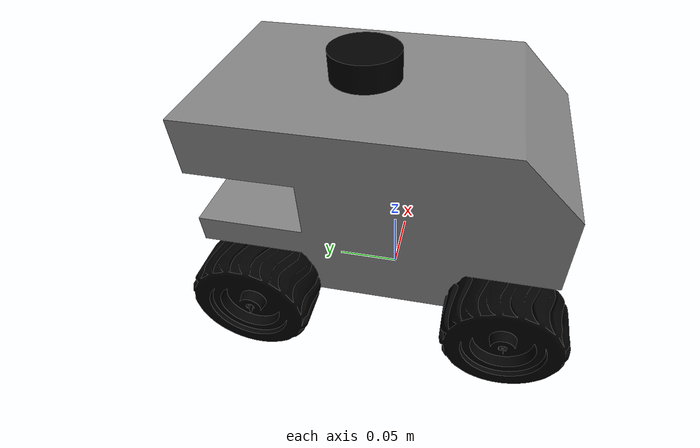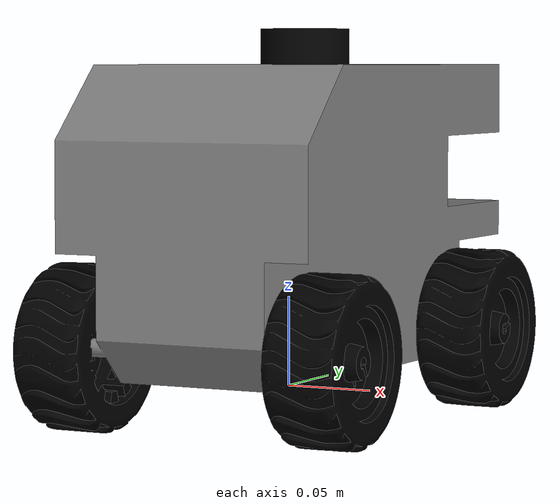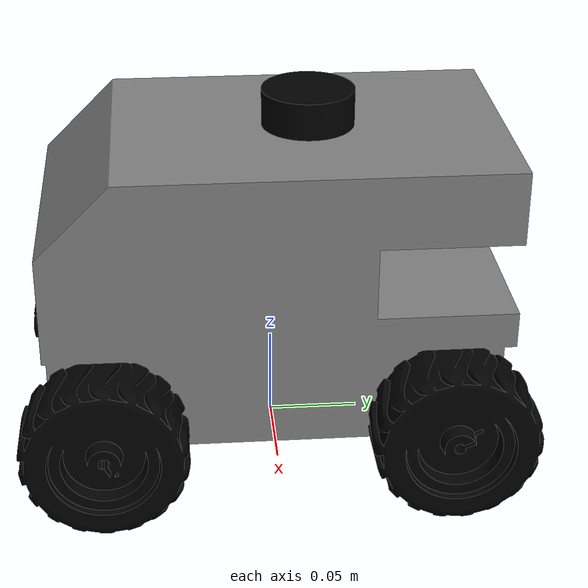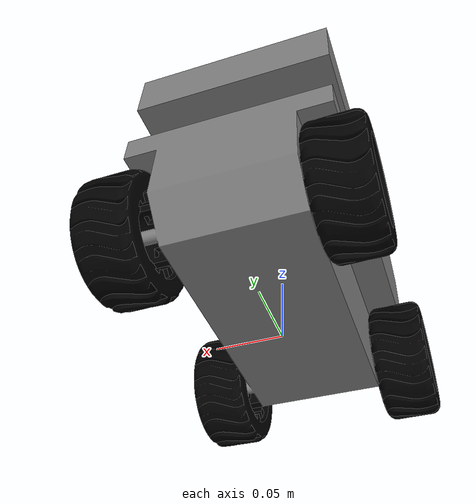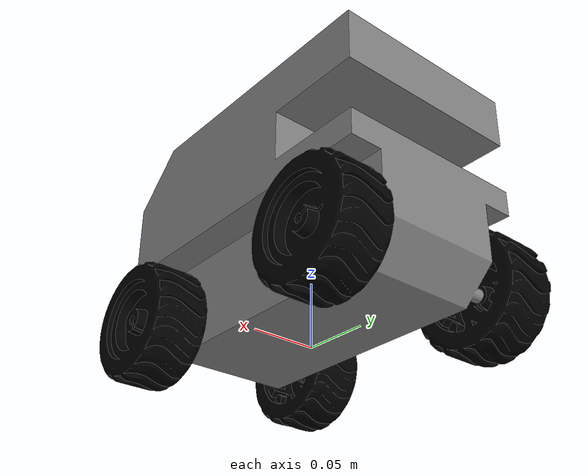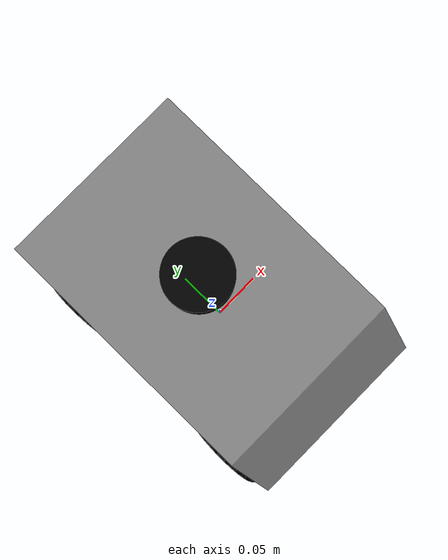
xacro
<?xml version="1.0" ?>
<robot name="amr_x100" xmlns:xacro="http://www.ros.org/wiki/xacro">

<xacro:include filename="$(find amr_x100_description)/urdf/materials.xacro" />
<xacro:include filename="$(find amr_x100_description)/urdf/amr_x100.trans" />
<xacro:include filename="$(find amr_x100_description)/urdf/amr_x100.gazebo" />
<link name="base_link">
  <inertial>
    <origin xyz="7.255471404615764e-17 0.006962748981841171 0.10189542905865645" rpy="0 0 0"/>
    <mass value="7.872164892691029"/>
    <inertia ixx="0.074639" iyy="0.044119" izz="0.069393" ixy="-0.0" iyz="-0.002422" ixz="0.0"/>
  </inertial>
  <visual>
    <origin xyz="0 0 0" rpy="0 0 0"/>
    <geometry>
      <mesh filename="file://$(find amr_x100_description)/meshes/base_link.stl" scale="0.001 0.001 0.001"/>
    </geometry>
    <material name="gray"/>
  </visual>
  <collision>
    <origin xyz="0 0 0" rpy="0 0 0"/>
    <geometry>
      <mesh filename="file://$(find amr_x100_description)/meshes/base_link.stl" scale="0.001 0.001 0.001"/>
    </geometry>
  </collision>
</link>

<link name="front_left_wheel_1">
  <inertial>
    <origin xyz="0.005146604543041153 -5.864185124465626e-06 1.200411432194376e-05" rpy="0 0 0"/>
    <mass value="0.20600519133637565"/>
    <inertia ixx="0.000248" iyy="0.000149" izz="0.000149" ixy="0.0" iyz="-0.0" ixz="-0.0"/>
  </inertial>
  <visual>
    <origin xyz="-0.07 0.095 -0.0275" rpy="0 0 0"/>
    <geometry>
      <mesh filename="file://$(find amr_x100_description)/meshes/front_left_wheel_1.stl" scale="0.001 0.001 0.001"/>
    </geometry>
    <material name="black"/>
  </visual>
  <collision>
    <origin xyz="-0.07 0.095 -0.0275" rpy="0 0 0"/>
    <geometry>
      <mesh filename="file://$(find amr_x100_description)/meshes/front_left_wheel_1.stl" scale="0.001 0.001 0.001"/>
    </geometry>
  </collision>
</link>

<link name="back_left_wheel_1">
  <inertial>
    <origin xyz="0.005146604543041153 -1.2134853114117994e-05 -5.588628440588578e-06" rpy="0 0 0"/>
    <mass value="0.20600519133637565"/>
    <inertia ixx="0.000248" iyy="0.000149" izz="0.000149" ixy="0.0" iyz="0.0" ixz="0.0"/>
  </inertial>
  <visual>
    <origin xyz="-0.07 -0.095 -0.0275" rpy="0 0 0"/>
    <geometry>
      <mesh filename="file://$(find amr_x100_description)/meshes/back_left_wheel_1.stl" scale="0.001 0.001 0.001"/>
    </geometry>
    <material name="black"/>
  </visual>
  <collision>
    <origin xyz="-0.07 -0.095 -0.0275" rpy="0 0 0"/>
    <geometry>
      <mesh filename="file://$(find amr_x100_description)/meshes/back_left_wheel_1.stl" scale="0.001 0.001 0.001"/>
    </geometry>
  </collision>
</link>

<link name="back_right_wheel_1">
  <inertial>
    <origin xyz="-0.005146604543041236 5.249658346917485e-08 1.335981556964752e-05" rpy="0 0 0"/>
    <mass value="0.20600519133637565"/>
    <inertia ixx="0.000248" iyy="0.000149" izz="0.000149" ixy="0.0" iyz="-0.0" ixz="0.0"/>
  </inertial>
  <visual>
    <origin xyz="0.07 -0.095 -0.0275" rpy="0 0 0"/>
    <geometry>
      <mesh filename="file://$(find amr_x100_description)/meshes/back_right_wheel_1.stl" scale="0.001 0.001 0.001"/>
    </geometry>
    <material name="black"/>
  </visual>
  <collision>
    <origin xyz="0.07 -0.095 -0.0275" rpy="0 0 0"/>
    <geometry>
      <mesh filename="file://$(find amr_x100_description)/meshes/back_right_wheel_1.stl" scale="0.001 0.001 0.001"/>
    </geometry>
  </collision>
</link>

<link name="front_right_wheel_1">
  <inertial>
    <origin xyz="-0.005146604543041167 -8.613623555836503e-06 1.0212390375619745e-05" rpy="0 0 0"/>
    <mass value="0.20600519133637565"/>
    <inertia ixx="0.000248" iyy="0.000149" izz="0.000149" ixy="-0.0" iyz="-0.0" ixz="0.0"/>
  </inertial>
  <visual>
    <origin xyz="0.07 0.095 -0.0275" rpy="0 0 0"/>
    <geometry>
      <mesh filename="file://$(find amr_x100_description)/meshes/front_right_wheel_1.stl" scale="0.001 0.001 0.001"/>
    </geometry>
    <material name="black"/>
  </visual>
  <collision>
    <origin xyz="0.07 0.095 -0.0275" rpy="0 0 0"/>
    <geometry>
      <mesh filename="file://$(find amr_x100_description)/meshes/front_right_wheel_1.stl" scale="0.001 0.001 0.001"/>
    </geometry>
  </collision>
</link>

<link name="Lidar_1">
  <inertial>
    <origin xyz="-3.618764437576268e-18 -6.938893903907228e-18 0.010000000000000009" rpy="0 0 0"/>
    <mass value="0.3082687791334984"/>
    <inertia ixx="5.8e-05" iyy="5.8e-05" izz="9.6e-05" ixy="-0.0" iyz="0.0" ixz="-0.0"/>
  </inertial>
  <visual>
    <origin xyz="-0.0 -0.02 -0.18" rpy="0 0 0"/>
    <geometry>
      <mesh filename="file://$(find amr_x100_description)/meshes/Lidar_1.stl" scale="0.001 0.001 0.001"/>
    </geometry>
    <material name="black"/>
  </visual>
  <collision>
    <origin xyz="-0.0 -0.02 -0.18" rpy="0 0 0"/>
    <geometry>
      <mesh filename="file://$(find amr_x100_description)/meshes/Lidar_1.stl" scale="0.001 0.001 0.001"/>
    </geometry>
  </collision>
</link>

<joint name="front_left_wheel" type="continuous">
  <origin xyz="0.07 -0.095 0.0275" rpy="0 0 0"/>
  <parent link="base_link"/>
  <child link="front_left_wheel_1"/>
  <axis xyz="1.0 0.0 0.0"/>
</joint>

<joint name="back_left_wheel" type="continuous">
  <origin xyz="0.07 0.095 0.0275" rpy="0 0 0"/>
  <parent link="base_link"/>
  <child link="back_left_wheel_1"/>
  <axis xyz="1.0 0.0 0.0"/>
</joint>

<joint name="back_right_wheel" type="continuous">
  <origin xyz="-0.07 0.095 0.0275" rpy="0 0 0"/>
  <parent link="base_link"/>
  <child link="back_right_wheel_1"/>
  <axis xyz="1.0 0.0 0.0"/>
</joint>

<joint name="front_right_wheel" type="continuous">
  <origin xyz="-0.07 -0.095 0.0275" rpy="0 0 0"/>
  <parent link="base_link"/>
  <child link="front_right_wheel_1"/>
  <axis xyz="1.0 0.0 0.0"/>
</joint>

<joint name="Rigid 5" type="fixed">
  <origin xyz="0.0 0.02 0.18" rpy="0 0 0"/>
  <parent link="base_link"/>
  <child link="Lidar_1"/>
</joint>

<!-- Added later for trial-->

<gazebo>
  <plugin name="differential_drive_controller" filename="libgazebo_ros_diff_drive.so">
    <ros>
      <namespace>/</namespace>
      <remapping>cmd_vel:=/cmd_vel</remapping>
    </ros>
    <left_joint>front_left_wheel</left_joint>
    <left_joint>back_left_wheel</left_joint>
    <right_joint>front_right_wheel</right_joint>
    <right_joint>back_right_wheel</right_joint>
    <wheel_separation>0.14</wheel_separation>
    <wheel_diameter>0.09135</wheel_diameter>
    <torque>100000000000000.0</torque>
    <command_topic>/cmd_vel</command_topic>
  </plugin>
</gazebo>

</robot>

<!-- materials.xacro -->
<robot name="amr_x100" xmlns:xacro="http://www.ros.org/wiki/xacro" >

<material name="silver">
  <color rgba="0.700 0.700 0.700 1.000"/>
</material>

<material name="gray">
  <color rgba="0.5 0.5 0.5 1.0"/>
</material>

<material name="black">
  <color rgba="0.0 0.0 0.0 1.0"/>
</material>

</robot>

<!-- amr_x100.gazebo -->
<robot name="amr_x100" xmlns:xacro="http://www.ros.org/wiki/xacro" >

<xacro:property name="body_color" value="Gazebo/Silver" />
<xacro:property name="gray" value="Gazebo/Gray" />
<xacro:property name="black" value="Gazebo/Black" />
<xacro:property name="body" value="Gazebo/DimGray" />

<gazebo>
  <plugin name="differential_drive_controller" filename="libgazebo_ros_diff_drive.so"/>
</gazebo>

<gazebo reference="base_link">
  <material>${body}</material>
  <mu1>0.2</mu1>
  <mu2>0.2</mu2>
  <self_collide>true</self_collide>
  <gravity>true</gravity>
</gazebo>

<gazebo reference="front_left_wheel_1">
  <material>${gray}</material>
  <mu1>0.2</mu1>
  <mu2>0.2</mu2>
  <self_collide>true</self_collide>
</gazebo>

<gazebo reference="back_left_wheel_1">
  <material>${gray}</material>
  <mu1>0.2</mu1>
  <mu2>0.2</mu2>
  <self_collide>true</self_collide>
</gazebo>

<gazebo reference="back_right_wheel_1">
  <material>${gray}</material>
  <mu1>0.2</mu1>
  <mu2>0.2</mu2>
  <self_collide>true</self_collide>
</gazebo>

<gazebo reference="front_right_wheel_1">
  <material>${gray}</material>
  <mu1>0.2</mu1>
  <mu2>0.2</mu2>
  <self_collide>true</self_collide>
</gazebo>

<gazebo reference="Lidar_1">
  <material>${gray}</material>
  <mu1>0.2</mu1>
  <mu2>0.2</mu2>
  <self_collide>true</self_collide>
</gazebo>

</robot>
